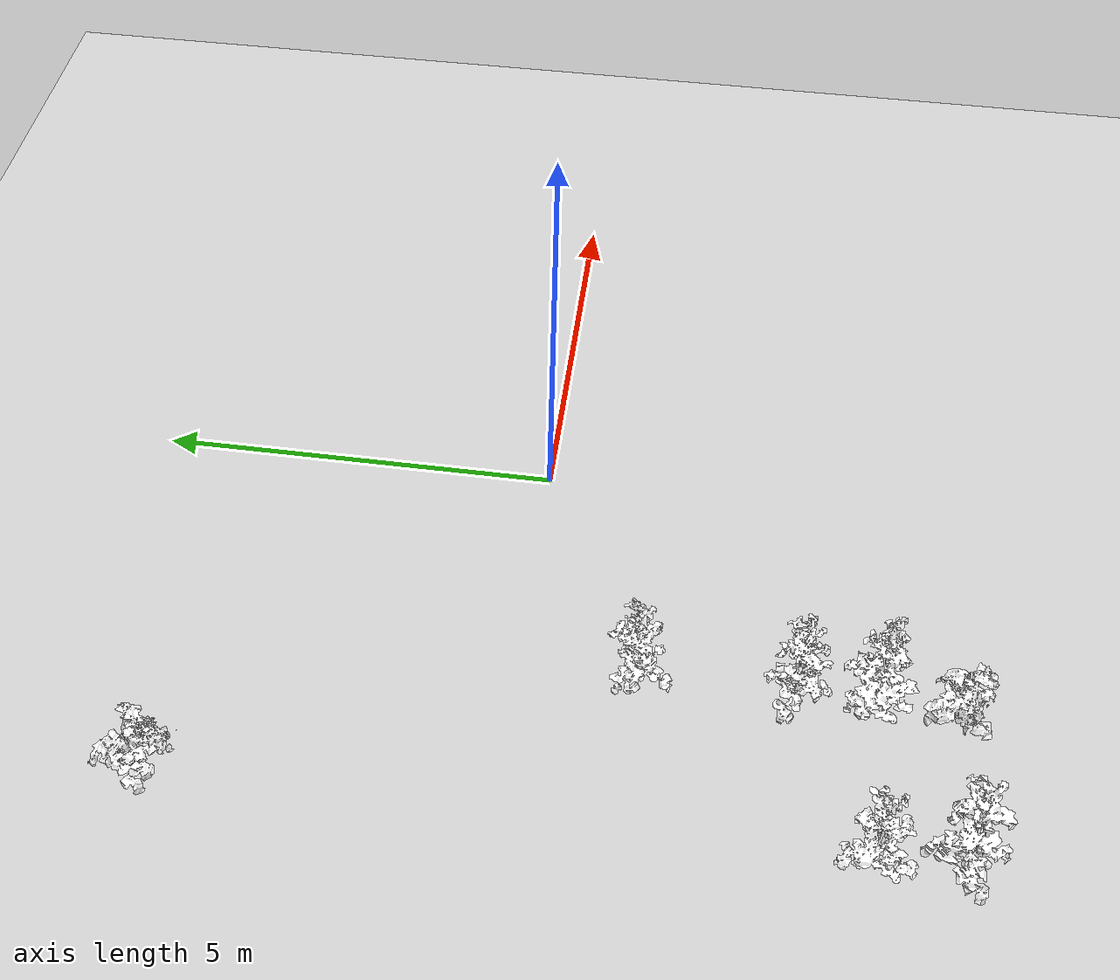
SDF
<sdf version="1.6">
 <world name="field">
  <physics type="ode">
   <max_step_size>0.001</max_step_size>
   <real_time_factor>1</real_time_factor>
   <real_time_update_rate>1000</real_time_update_rate>
  </physics>
  <gravity>0 0 -9.8</gravity>
  <magnetic_field>6e-06 2.3e-05 -4.2e-05</magnetic_field>
  <scene><ambient>1 1 1 1</ambient><background>0.8 0.8 0.8 1</background><shadows>1</shadows></scene>
  <light name="sun" type="directional">
   <pose>0 0 10 0 -0 0</pose>
   <diffuse>0.8 0.8 0.8 1</diffuse>
   <specular>0.8 0.8 0.8 1</specular>
   <attenuation>
    <range>1000</range>
    <constant>0.9</constant>
    <linear>0.01</linear>
    <quadratic>0.001</quadratic>
   </attenuation>
   <direction>-0.5 0.1 -0.9</direction>
  </light>
  <model name="ground"><static>true</static><include><uri>model://ground</uri></include></model>
  <model name="tomato_0">
   <static>true</static>
   <include><uri>model://tomato_0</uri></include>
   <pose>-5.0 -5.0 0 0 0 0</pose>
  </model>
  <model name="tomato_1">
   <static>true</static>
   <include><uri>model://tomato_1</uri></include>
   <pose>-5.0 -4.1 0 0 0 0</pose>
  </model>
  <model name="tomato_10">
   <static>true</static>
   <include><uri>model://tomato_10</uri></include>
   <pose>-5.0 4.0 0 0 0 0</pose>
  </model>
  <model name="tomato_12">
   <static>true</static>
   <include><uri>model://tomato_12</uri></include>
   <pose>-3.0 -5.0 0 0 0 0</pose>
  </model>
  <model name="tomato_13">
   <static>true</static>
   <include><uri>model://tomato_13</uri></include>
   <pose>-3.0 -4.1 0 0 0 0</pose>
  </model>
  <model name="tomato_14">
   <static>true</static>
   <include><uri>model://tomato_14</uri></include>
   <pose>-3.0 -3.2 0 0 0 0</pose>
  </model>
  <model name="tomato_16">
   <static>true</static>
   <include><uri>model://tomato_16</uri></include>
   <pose>-3.0 -1.4 0 0 0 0</pose>
  </model>
 </world>
</sdf>

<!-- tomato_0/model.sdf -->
<sdf version="1.6">
  <model name="tomato_0">
    <static>true</static>
    <link name="link">
      <collision name="collision">
        <geometry>
          <box>
            <size>.1 .1 1</size>
          </box>
        </geometry>
      </collision>
      <visual name="branch">
        <geometry>
          <mesh>
            <uri>model://tomato_0/meshes/tomato.dae</uri>
            <submesh>
              <name>Branch1</name>
            </submesh>
          </mesh>
        </geometry>
        <material>
          <diffuse>1.0 1.0 1.0</diffuse>
          <script>
            <uri>model://tomato_0/materials/scripts/</uri>
            <uri>model://tomato_0/materials/textures/</uri>
            <name>branch</name>
          </script>
          <pbr>
            <metal>
              <albedo_map>model://tomato_0/materials/textures/AG15brn1.png</albedo_map>
            </metal>
          </pbr>
        </material>
      </visual>
      <visual name="leaf1">
        <geometry>
          <mesh>
            <uri>model://tomato_0/meshes/tomato.dae</uri>
            <submesh>
              <name>Leaf1</name>
            </submesh>
          </mesh>
        </geometry>
        <material>
          <diffuse>1.0 1.0 1.0</diffuse>
          <script>
            <uri>model://tomato_0/materials/scripts/</uri>
            <uri>model://tomato_0/materials/textures/</uri>
            <name>leaf1</name>
          </script>
          <pbr>
            <metal>
              <albedo_map>model://tomato_0/materials/textures/AG15lef1.png</albedo_map>
            </metal>
          </pbr>
        </material>
      </visual>
      <visual name="leaf2">
        <geometry>
          <mesh>
            <uri>model://tomato_0/meshes/tomato.dae</uri>
            <submesh>
              <name>Leaf2</name>
            </submesh>
          </mesh>
        </geometry>
        <material>
          <diffuse>1.0 1.0 1.0</diffuse>
          <script>
            <uri>model://tomato_0/materials/scripts/</uri>
            <uri>model://tomato_0/materials/textures/</uri>
            <name>leaf2</name>
          </script>
          <pbr>
            <metal>
              <albedo_map>model://tomato_0/materials/textures/AG15lef2.png</albedo_map>
            </metal>
          </pbr>
        </material>
      </visual>
      <visual name="fruit1">
        <geometry>
          <mesh>
            <uri>model://tomato_0/meshes/tomato.dae</uri>
            <submesh>
              <name>Fruit1</name>
            </submesh>
          </mesh>
        </geometry>
        <material>
          <diffuse>1.0 1.0 1.0</diffuse>
          <script>
            <uri>model://tomato_0/materials/scripts/</uri>
            <uri>model://tomato_0/materials/textures/</uri>
            <name>fruit1</name>
          </script>
          <pbr>
            <metal>
              <albedo_map>model://tomato_0/materials/textures/AG15frt1.png</albedo_map>
            </metal>
          </pbr>
        </material>
      </visual>
      <visual name="fruit2">
        <geometry>
          <mesh>
            <uri>model://tomato_0/meshes/tomato.dae</uri>
            <submesh>
              <name>Fruit2</name>
            </submesh>
          </mesh>
        </geometry>
        <material>
          <diffuse>1.0 1.0 1.0</diffuse>
          <script>
            <uri>model://tomato_0/materials/scripts/</uri>
            <uri>model://tomato_0/materials/textures/</uri>
            <name>fruit2</name>
          </script>
          <pbr>
            <metal>
              <albedo_map>model://tomato_0/materials/textures/AG15frt2.png</albedo_map>
            </metal>
          </pbr>
        </material>
      </visual>
      <visual name="fruit3">
        <geometry>
          <mesh>
            <uri>model://tomato_0/meshes/tomato.dae</uri>
            <submesh>
              <name>Fruit3</name>
            </submesh>
          </mesh>
        </geometry>
        <material>
          <diffuse>1.0 1.0 1.0</diffuse>
          <script>
            <uri>model://tomato_0/materials/scripts/</uri>
            <uri>model://tomato_0/materials/textures/</uri>
            <name>fruit3</name>
          </script>
          <pbr>
            <metal>
              <albedo_map>model://tomato_0/materials/textures/AG15frt3.png</albedo_map>
            </metal>
          </pbr>
        </material>
      </visual>
      <visual name="fruit4">
        <geometry>
          <mesh>
            <uri>model://tomato_0/meshes/tomato.dae</uri>
            <submesh>
              <name>Fruit4</name>
            </submesh>
          </mesh>
        </geometry>
        <material>
          <diffuse>1.0 1.0 1.0</diffuse>
          <script>
            <uri>model://tomato_0/materials/scripts/</uri>
            <uri>model://tomato_0/materials/textures/</uri>
            <name>fruit4</name>
          </script>
          <pbr>
            <metal>
              <albedo_map>model://tomato_0/materials/textures/AG15frt4.png</albedo_map>
            </metal>
          </pbr>
        </material>
      </visual>
      <visual name="blossom1">
        <geometry>
          <mesh>
            <uri>model://tomato_0/meshes/tomato.dae</uri>
            <submesh>
              <name>Blossom1</name>
            </submesh>
          </mesh>
        </geometry>
        <material>
          <diffuse>1.0 1.0 1.0</diffuse>
          <script>
            <uri>model://tomato_0/materials/scripts/</uri>
            <uri>model://tomato_0/materials/textures/</uri>
            <name>blossom1</name>
          </script>
          <pbr>
            <metal>
              <albedo_map>model://tomato_0/materials/textures/AG15blo1.png</albedo_map>
            </metal>
          </pbr>
        </material>
      </visual>
      <visual name="blossom2">
        <geometry>
          <mesh>
            <uri>model://tomato_0/meshes/tomato.dae</uri>
            <submesh>
              <name>Blossom2</name>
            </submesh>
          </mesh>
        </geometry>
        <material>
          <diffuse>1.0 1.0 1.0</diffuse>
          <script>
            <uri>model://tomato_0/materials/scripts/</uri>
            <uri>model://tomato_0/materials/textures/</uri>
            <name>blossom2</name>
          </script>
          <pbr>
            <metal>
              <albedo_map>model://tomato_0/materials/textures/AG15blo2.png</albedo_map>
            </metal>
          </pbr>
        </material>
      </visual>
      <visual name="blossom3">
        <geometry>
          <mesh>
            <uri>model://tomato_0/meshes/tomato.dae</uri>
            <submesh>
              <name>Blossom3</name>
            </submesh>
          </mesh>
        </geometry>
        <material>
          <diffuse>1.0 1.0 1.0</diffuse>
          <script>
            <uri>model://tomato_0/materials/scripts/</uri>
            <uri>model://tomato_0/materials/textures/</uri>
            <name>blossom3</name>
          </script>
          <pbr>
            <metal>
              <albedo_map>model://tomato_0/materials/textures/AG15blo3.png</albedo_map>
            </metal>
          </pbr>
        </material>
      </visual>
    </link>
  </model>
</sdf>

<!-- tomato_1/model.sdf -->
<sdf version="1.6">
  <model name="tomato_1">
    <static>true</static>
    <link name="link">
      <collision name="collision">
        <geometry>
          <box>
            <size>.1 .1 1</size>
          </box>
        </geometry>
      </collision>
      <visual name="branch">
        <geometry>
          <mesh>
            <uri>model://tomato_1/meshes/tomato.dae</uri>
            <submesh>
              <name>Branch1</name>
            </submesh>
          </mesh>
        </geometry>
        <material>
          <diffuse>1.0 1.0 1.0</diffuse>
          <script>
            <uri>model://tomato_1/materials/scripts/</uri>
            <uri>model://tomato_1/materials/textures/</uri>
            <name>branch</name>
          </script>
          <pbr>
            <metal>
              <albedo_map>model://tomato_1/materials/textures/AG15brn1.png</albedo_map>
            </metal>
          </pbr>
        </material>
      </visual>
      <visual name="leaf1">
        <geometry>
          <mesh>
            <uri>model://tomato_1/meshes/tomato.dae</uri>
            <submesh>
              <name>Leaf1</name>
            </submesh>
          </mesh>
        </geometry>
        <material>
          <diffuse>1.0 1.0 1.0</diffuse>
          <script>
            <uri>model://tomato_1/materials/scripts/</uri>
            <uri>model://tomato_1/materials/textures/</uri>
            <name>leaf1</name>
          </script>
          <pbr>
            <metal>
              <albedo_map>model://tomato_1/materials/textures/AG15lef1.png</albedo_map>
            </metal>
          </pbr>
        </material>
      </visual>
      <visual name="leaf2">
        <geometry>
          <mesh>
            <uri>model://tomato_1/meshes/tomato.dae</uri>
            <submesh>
              <name>Leaf2</name>
            </submesh>
          </mesh>
        </geometry>
        <material>
          <diffuse>1.0 1.0 1.0</diffuse>
          <script>
            <uri>model://tomato_1/materials/scripts/</uri>
            <uri>model://tomato_1/materials/textures/</uri>
            <name>leaf2</name>
          </script>
          <pbr>
            <metal>
              <albedo_map>model://tomato_1/materials/textures/AG15lef2.png</albedo_map>
            </metal>
          </pbr>
        </material>
      </visual>
      <visual name="fruit1">
        <geometry>
          <mesh>
            <uri>model://tomato_1/meshes/tomato.dae</uri>
            <submesh>
              <name>Fruit1</name>
            </submesh>
          </mesh>
        </geometry>
        <material>
          <diffuse>1.0 1.0 1.0</diffuse>
          <script>
            <uri>model://tomato_1/materials/scripts/</uri>
            <uri>model://tomato_1/materials/textures/</uri>
            <name>fruit1</name>
          </script>
          <pbr>
            <metal>
              <albedo_map>model://tomato_1/materials/textures/AG15frt1.png</albedo_map>
            </metal>
          </pbr>
        </material>
      </visual>
      <visual name="fruit2">
        <geometry>
          <mesh>
            <uri>model://tomato_1/meshes/tomato.dae</uri>
            <submesh>
              <name>Fruit2</name>
            </submesh>
          </mesh>
        </geometry>
        <material>
          <diffuse>1.0 1.0 1.0</diffuse>
          <script>
            <uri>model://tomato_1/materials/scripts/</uri>
            <uri>model://tomato_1/materials/textures/</uri>
            <name>fruit2</name>
          </script>
          <pbr>
            <metal>
              <albedo_map>model://tomato_1/materials/textures/AG15frt2.png</albedo_map>
            </metal>
          </pbr>
        </material>
      </visual>
      <visual name="fruit3">
        <geometry>
          <mesh>
            <uri>model://tomato_1/meshes/tomato.dae</uri>
            <submesh>
              <name>Fruit3</name>
            </submesh>
          </mesh>
        </geometry>
        <material>
          <diffuse>1.0 1.0 1.0</diffuse>
          <script>
            <uri>model://tomato_1/materials/scripts/</uri>
            <uri>model://tomato_1/materials/textures/</uri>
            <name>fruit3</name>
          </script>
          <pbr>
            <metal>
              <albedo_map>model://tomato_1/materials/textures/AG15frt3.png</albedo_map>
            </metal>
          </pbr>
        </material>
      </visual>
      <visual name="fruit4">
        <geometry>
          <mesh>
            <uri>model://tomato_1/meshes/tomato.dae</uri>
            <submesh>
              <name>Fruit4</name>
            </submesh>
          </mesh>
        </geometry>
        <material>
          <diffuse>1.0 1.0 1.0</diffuse>
          <script>
            <uri>model://tomato_1/materials/scripts/</uri>
            <uri>model://tomato_1/materials/textures/</uri>
            <name>fruit4</name>
          </script>
          <pbr>
            <metal>
              <albedo_map>model://tomato_1/materials/textures/AG15frt4.png</albedo_map>
            </metal>
          </pbr>
        </material>
      </visual>
      <visual name="blossom1">
        <geometry>
          <mesh>
            <uri>model://tomato_1/meshes/tomato.dae</uri>
            <submesh>
              <name>Blossom1</name>
            </submesh>
          </mesh>
        </geometry>
        <material>
          <diffuse>1.0 1.0 1.0</diffuse>
          <script>
            <uri>model://tomato_1/materials/scripts/</uri>
            <uri>model://tomato_1/materials/textures/</uri>
            <name>blossom1</name>
          </script>
          <pbr>
            <metal>
              <albedo_map>model://tomato_1/materials/textures/AG15blo1.png</albedo_map>
            </metal>
          </pbr>
        </material>
      </visual>
      <visual name="blossom2">
        <geometry>
          <mesh>
            <uri>model://tomato_1/meshes/tomato.dae</uri>
            <submesh>
              <name>Blossom2</name>
            </submesh>
          </mesh>
        </geometry>
        <material>
          <diffuse>1.0 1.0 1.0</diffuse>
          <script>
            <uri>model://tomato_1/materials/scripts/</uri>
            <uri>model://tomato_1/materials/textures/</uri>
            <name>blossom2</name>
          </script>
          <pbr>
            <metal>
              <albedo_map>model://tomato_1/materials/textures/AG15blo2.png</albedo_map>
            </metal>
          </pbr>
        </material>
      </visual>
      <visual name="blossom3">
        <geometry>
          <mesh>
            <uri>model://tomato_1/meshes/tomato.dae</uri>
            <submesh>
              <name>Blossom3</name>
            </submesh>
          </mesh>
        </geometry>
        <material>
          <diffuse>1.0 1.0 1.0</diffuse>
          <script>
            <uri>model://tomato_1/materials/scripts/</uri>
            <uri>model://tomato_1/materials/textures/</uri>
            <name>blossom3</name>
          </script>
          <pbr>
            <metal>
              <albedo_map>model://tomato_1/materials/textures/AG15blo3.png</albedo_map>
            </metal>
          </pbr>
        </material>
      </visual>
    </link>
  </model>
</sdf>

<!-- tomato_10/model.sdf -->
<sdf version="1.6">
  <model name="tomato_10">
    <static>true</static>
    <link name="link">
      <collision name="collision">
        <geometry>
          <box>
            <size>.1 .1 1</size>
          </box>
        </geometry>
      </collision>
      <visual name="branch">
        <geometry>
          <mesh>
            <uri>model://tomato_10/meshes/tomato.dae</uri>
            <submesh>
              <name>Branch1</name>
            </submesh>
          </mesh>
        </geometry>
        <material>
          <diffuse>1.0 1.0 1.0</diffuse>
          <script>
            <uri>model://tomato_10/materials/scripts/</uri>
            <uri>model://tomato_10/materials/textures/</uri>
            <name>branch</name>
          </script>
          <pbr>
            <metal>
              <albedo_map>model://tomato_10/materials/textures/AG15brn1.png</albedo_map>
            </metal>
          </pbr>
        </material>
      </visual>
      <visual name="leaf1">
        <geometry>
          <mesh>
            <uri>model://tomato_10/meshes/tomato.dae</uri>
            <submesh>
              <name>Leaf1</name>
            </submesh>
          </mesh>
        </geometry>
        <material>
          <diffuse>1.0 1.0 1.0</diffuse>
          <script>
            <uri>model://tomato_10/materials/scripts/</uri>
            <uri>model://tomato_10/materials/textures/</uri>
            <name>leaf1</name>
          </script>
          <pbr>
            <metal>
              <albedo_map>model://tomato_10/materials/textures/AG15lef1.png</albedo_map>
            </metal>
          </pbr>
        </material>
      </visual>
      <visual name="leaf2">
        <geometry>
          <mesh>
            <uri>model://tomato_10/meshes/tomato.dae</uri>
            <submesh>
              <name>Leaf2</name>
            </submesh>
          </mesh>
        </geometry>
        <material>
          <diffuse>1.0 1.0 1.0</diffuse>
          <script>
            <uri>model://tomato_10/materials/scripts/</uri>
            <uri>model://tomato_10/materials/textures/</uri>
            <name>leaf2</name>
          </script>
          <pbr>
            <metal>
              <albedo_map>model://tomato_10/materials/textures/AG15lef2.png</albedo_map>
            </metal>
          </pbr>
        </material>
      </visual>
      <visual name="fruit1">
        <geometry>
          <mesh>
            <uri>model://tomato_10/meshes/tomato.dae</uri>
            <submesh>
              <name>Fruit1</name>
            </submesh>
          </mesh>
        </geometry>
        <material>
          <diffuse>1.0 1.0 1.0</diffuse>
          <script>
            <uri>model://tomato_10/materials/scripts/</uri>
            <uri>model://tomato_10/materials/textures/</uri>
            <name>fruit1</name>
          </script>
          <pbr>
            <metal>
              <albedo_map>model://tomato_10/materials/textures/AG15frt1.png</albedo_map>
            </metal>
          </pbr>
        </material>
      </visual>
      <visual name="fruit2">
        <geometry>
          <mesh>
            <uri>model://tomato_10/meshes/tomato.dae</uri>
            <submesh>
              <name>Fruit2</name>
            </submesh>
          </mesh>
        </geometry>
        <material>
          <diffuse>1.0 1.0 1.0</diffuse>
          <script>
            <uri>model://tomato_10/materials/scripts/</uri>
            <uri>model://tomato_10/materials/textures/</uri>
            <name>fruit2</name>
          </script>
          <pbr>
            <metal>
              <albedo_map>model://tomato_10/materials/textures/AG15frt2.png</albedo_map>
            </metal>
          </pbr>
        </material>
      </visual>
      <visual name="fruit3">
        <geometry>
          <mesh>
            <uri>model://tomato_10/meshes/tomato.dae</uri>
            <submesh>
              <name>Fruit3</name>
            </submesh>
          </mesh>
        </geometry>
        <material>
          <diffuse>1.0 1.0 1.0</diffuse>
          <script>
            <uri>model://tomato_10/materials/scripts/</uri>
            <uri>model://tomato_10/materials/textures/</uri>
            <name>fruit3</name>
          </script>
          <pbr>
            <metal>
              <albedo_map>model://tomato_10/materials/textures/AG15frt3.png</albedo_map>
            </metal>
          </pbr>
        </material>
      </visual>
      <visual name="fruit4">
        <geometry>
          <mesh>
            <uri>model://tomato_10/meshes/tomato.dae</uri>
            <submesh>
              <name>Fruit4</name>
            </submesh>
          </mesh>
        </geometry>
        <material>
          <diffuse>1.0 1.0 1.0</diffuse>
          <script>
            <uri>model://tomato_10/materials/scripts/</uri>
            <uri>model://tomato_10/materials/textures/</uri>
            <name>fruit4</name>
          </script>
          <pbr>
            <metal>
              <albedo_map>model://tomato_10/materials/textures/AG15frt4.png</albedo_map>
            </metal>
          </pbr>
        </material>
      </visual>
      <visual name="blossom1">
        <geometry>
          <mesh>
            <uri>model://tomato_10/meshes/tomato.dae</uri>
            <submesh>
              <name>Blossom1</name>
            </submesh>
          </mesh>
        </geometry>
        <material>
          <diffuse>1.0 1.0 1.0</diffuse>
          <script>
            <uri>model://tomato_10/materials/scripts/</uri>
            <uri>model://tomato_10/materials/textures/</uri>
            <name>blossom1</name>
          </script>
          <pbr>
            <metal>
              <albedo_map>model://tomato_10/materials/textures/AG15blo1.png</albedo_map>
            </metal>
          </pbr>
        </material>
      </visual>
      <visual name="blossom2">
        <geometry>
          <mesh>
            <uri>model://tomato_10/meshes/tomato.dae</uri>
            <submesh>
              <name>Blossom2</name>
            </submesh>
          </mesh>
        </geometry>
        <material>
          <diffuse>1.0 1.0 1.0</diffuse>
          <script>
            <uri>model://tomato_10/materials/scripts/</uri>
            <uri>model://tomato_10/materials/textures/</uri>
            <name>blossom2</name>
          </script>
          <pbr>
            <metal>
              <albedo_map>model://tomato_10/materials/textures/AG15blo2.png</albedo_map>
            </metal>
          </pbr>
        </material>
      </visual>
      <visual name="blossom3">
        <geometry>
          <mesh>
            <uri>model://tomato_10/meshes/tomato.dae</uri>
            <submesh>
              <name>Blossom3</name>
            </submesh>
          </mesh>
        </geometry>
        <material>
          <diffuse>1.0 1.0 1.0</diffuse>
          <script>
            <uri>model://tomato_10/materials/scripts/</uri>
            <uri>model://tomato_10/materials/textures/</uri>
            <name>blossom3</name>
          </script>
          <pbr>
            <metal>
              <albedo_map>model://tomato_10/materials/textures/AG15blo3.png</albedo_map>
            </metal>
          </pbr>
        </material>
      </visual>
    </link>
  </model>
</sdf>

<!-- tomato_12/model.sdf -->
<sdf version="1.6">
  <model name="tomato_12">
    <static>true</static>
    <link name="link">
      <collision name="collision">
        <geometry>
          <box>
            <size>.1 .1 1</size>
          </box>
        </geometry>
      </collision>
      <visual name="branch">
        <geometry>
          <mesh>
            <uri>model://tomato_12/meshes/tomato.dae</uri>
            <submesh>
              <name>Branch1</name>
            </submesh>
          </mesh>
        </geometry>
        <material>
          <diffuse>1.0 1.0 1.0</diffuse>
          <script>
            <uri>model://tomato_12/materials/scripts/</uri>
            <uri>model://tomato_12/materials/textures/</uri>
            <name>branch</name>
          </script>
          <pbr>
            <metal>
              <albedo_map>model://tomato_12/materials/textures/AG15brn1.png</albedo_map>
            </metal>
          </pbr>
        </material>
      </visual>
      <visual name="leaf1">
        <geometry>
          <mesh>
            <uri>model://tomato_12/meshes/tomato.dae</uri>
            <submesh>
              <name>Leaf1</name>
            </submesh>
          </mesh>
        </geometry>
        <material>
          <diffuse>1.0 1.0 1.0</diffuse>
          <script>
            <uri>model://tomato_12/materials/scripts/</uri>
            <uri>model://tomato_12/materials/textures/</uri>
            <name>leaf1</name>
          </script>
          <pbr>
            <metal>
              <albedo_map>model://tomato_12/materials/textures/AG15lef1.png</albedo_map>
            </metal>
          </pbr>
        </material>
      </visual>
      <visual name="leaf2">
        <geometry>
          <mesh>
            <uri>model://tomato_12/meshes/tomato.dae</uri>
            <submesh>
              <name>Leaf2</name>
            </submesh>
          </mesh>
        </geometry>
        <material>
          <diffuse>1.0 1.0 1.0</diffuse>
          <script>
            <uri>model://tomato_12/materials/scripts/</uri>
            <uri>model://tomato_12/materials/textures/</uri>
            <name>leaf2</name>
          </script>
          <pbr>
            <metal>
              <albedo_map>model://tomato_12/materials/textures/AG15lef2.png</albedo_map>
            </metal>
          </pbr>
        </material>
      </visual>
      <visual name="fruit1">
        <geometry>
          <mesh>
            <uri>model://tomato_12/meshes/tomato.dae</uri>
            <submesh>
              <name>Fruit1</name>
            </submesh>
          </mesh>
        </geometry>
        <material>
          <diffuse>1.0 1.0 1.0</diffuse>
          <script>
            <uri>model://tomato_12/materials/scripts/</uri>
            <uri>model://tomato_12/materials/textures/</uri>
            <name>fruit1</name>
          </script>
          <pbr>
            <metal>
              <albedo_map>model://tomato_12/materials/textures/AG15frt1.png</albedo_map>
            </metal>
          </pbr>
        </material>
      </visual>
      <visual name="fruit2">
        <geometry>
          <mesh>
            <uri>model://tomato_12/meshes/tomato.dae</uri>
            <submesh>
              <name>Fruit2</name>
            </submesh>
          </mesh>
        </geometry>
        <material>
          <diffuse>1.0 1.0 1.0</diffuse>
          <script>
            <uri>model://tomato_12/materials/scripts/</uri>
            <uri>model://tomato_12/materials/textures/</uri>
            <name>fruit2</name>
          </script>
          <pbr>
            <metal>
              <albedo_map>model://tomato_12/materials/textures/AG15frt2.png</albedo_map>
            </metal>
          </pbr>
        </material>
      </visual>
      <visual name="fruit3">
        <geometry>
          <mesh>
            <uri>model://tomato_12/meshes/tomato.dae</uri>
            <submesh>
              <name>Fruit3</name>
            </submesh>
          </mesh>
        </geometry>
        <material>
          <diffuse>1.0 1.0 1.0</diffuse>
          <script>
            <uri>model://tomato_12/materials/scripts/</uri>
            <uri>model://tomato_12/materials/textures/</uri>
            <name>fruit3</name>
          </script>
          <pbr>
            <metal>
              <albedo_map>model://tomato_12/materials/textures/AG15frt3.png</albedo_map>
            </metal>
          </pbr>
        </material>
      </visual>
      <visual name="fruit4">
        <geometry>
          <mesh>
            <uri>model://tomato_12/meshes/tomato.dae</uri>
            <submesh>
              <name>Fruit4</name>
            </submesh>
          </mesh>
        </geometry>
        <material>
          <diffuse>1.0 1.0 1.0</diffuse>
          <script>
            <uri>model://tomato_12/materials/scripts/</uri>
            <uri>model://tomato_12/materials/textures/</uri>
            <name>fruit4</name>
          </script>
          <pbr>
            <metal>
              <albedo_map>model://tomato_12/materials/textures/AG15frt4.png</albedo_map>
            </metal>
          </pbr>
        </material>
      </visual>
      <visual name="blossom1">
        <geometry>
          <mesh>
            <uri>model://tomato_12/meshes/tomato.dae</uri>
            <submesh>
              <name>Blossom1</name>
            </submesh>
          </mesh>
        </geometry>
        <material>
          <diffuse>1.0 1.0 1.0</diffuse>
          <script>
            <uri>model://tomato_12/materials/scripts/</uri>
            <uri>model://tomato_12/materials/textures/</uri>
            <name>blossom1</name>
          </script>
          <pbr>
            <metal>
              <albedo_map>model://tomato_12/materials/textures/AG15blo1.png</albedo_map>
            </metal>
          </pbr>
        </material>
      </visual>
      <visual name="blossom2">
        <geometry>
          <mesh>
            <uri>model://tomato_12/meshes/tomato.dae</uri>
            <submesh>
              <name>Blossom2</name>
            </submesh>
          </mesh>
        </geometry>
        <material>
          <diffuse>1.0 1.0 1.0</diffuse>
          <script>
            <uri>model://tomato_12/materials/scripts/</uri>
            <uri>model://tomato_12/materials/textures/</uri>
            <name>blossom2</name>
          </script>
          <pbr>
            <metal>
              <albedo_map>model://tomato_12/materials/textures/AG15blo2.png</albedo_map>
            </metal>
          </pbr>
        </material>
      </visual>
      <visual name="blossom3">
        <geometry>
          <mesh>
            <uri>model://tomato_12/meshes/tomato.dae</uri>
            <submesh>
              <name>Blossom3</name>
            </submesh>
          </mesh>
        </geometry>
        <material>
          <diffuse>1.0 1.0 1.0</diffuse>
          <script>
            <uri>model://tomato_12/materials/scripts/</uri>
            <uri>model://tomato_12/materials/textures/</uri>
            <name>blossom3</name>
          </script>
          <pbr>
            <metal>
              <albedo_map>model://tomato_12/materials/textures/AG15blo3.png</albedo_map>
            </metal>
          </pbr>
        </material>
      </visual>
    </link>
  </model>
</sdf>

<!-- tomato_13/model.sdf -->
<sdf version="1.6">
  <model name="tomato_13">
    <static>true</static>
    <link name="link">
      <collision name="collision">
        <geometry>
          <box>
            <size>.1 .1 1</size>
          </box>
        </geometry>
      </collision>
      <visual name="branch">
        <geometry>
          <mesh>
            <uri>model://tomato_13/meshes/tomato.dae</uri>
            <submesh>
              <name>Branch1</name>
            </submesh>
          </mesh>
        </geometry>
        <material>
          <diffuse>1.0 1.0 1.0</diffuse>
          <script>
            <uri>model://tomato_13/materials/scripts/</uri>
            <uri>model://tomato_13/materials/textures/</uri>
            <name>branch</name>
          </script>
          <pbr>
            <metal>
              <albedo_map>model://tomato_13/materials/textures/AG15brn1.png</albedo_map>
            </metal>
          </pbr>
        </material>
      </visual>
      <visual name="leaf1">
        <geometry>
          <mesh>
            <uri>model://tomato_13/meshes/tomato.dae</uri>
            <submesh>
              <name>Leaf1</name>
            </submesh>
          </mesh>
        </geometry>
        <material>
          <diffuse>1.0 1.0 1.0</diffuse>
          <script>
            <uri>model://tomato_13/materials/scripts/</uri>
            <uri>model://tomato_13/materials/textures/</uri>
            <name>leaf1</name>
          </script>
          <pbr>
            <metal>
              <albedo_map>model://tomato_13/materials/textures/AG15lef1.png</albedo_map>
            </metal>
          </pbr>
        </material>
      </visual>
      <visual name="leaf2">
        <geometry>
          <mesh>
            <uri>model://tomato_13/meshes/tomato.dae</uri>
            <submesh>
              <name>Leaf2</name>
            </submesh>
          </mesh>
        </geometry>
        <material>
          <diffuse>1.0 1.0 1.0</diffuse>
          <script>
            <uri>model://tomato_13/materials/scripts/</uri>
            <uri>model://tomato_13/materials/textures/</uri>
            <name>leaf2</name>
          </script>
          <pbr>
            <metal>
              <albedo_map>model://tomato_13/materials/textures/AG15lef2.png</albedo_map>
            </metal>
          </pbr>
        </material>
      </visual>
      <visual name="fruit1">
        <geometry>
          <mesh>
            <uri>model://tomato_13/meshes/tomato.dae</uri>
            <submesh>
              <name>Fruit1</name>
            </submesh>
          </mesh>
        </geometry>
        <material>
          <diffuse>1.0 1.0 1.0</diffuse>
          <script>
            <uri>model://tomato_13/materials/scripts/</uri>
            <uri>model://tomato_13/materials/textures/</uri>
            <name>fruit1</name>
          </script>
          <pbr>
            <metal>
              <albedo_map>model://tomato_13/materials/textures/AG15frt1.png</albedo_map>
            </metal>
          </pbr>
        </material>
      </visual>
      <visual name="fruit2">
        <geometry>
          <mesh>
            <uri>model://tomato_13/meshes/tomato.dae</uri>
            <submesh>
              <name>Fruit2</name>
            </submesh>
          </mesh>
        </geometry>
        <material>
          <diffuse>1.0 1.0 1.0</diffuse>
          <script>
            <uri>model://tomato_13/materials/scripts/</uri>
            <uri>model://tomato_13/materials/textures/</uri>
            <name>fruit2</name>
          </script>
          <pbr>
            <metal>
              <albedo_map>model://tomato_13/materials/textures/AG15frt2.png</albedo_map>
            </metal>
          </pbr>
        </material>
      </visual>
      <visual name="fruit3">
        <geometry>
          <mesh>
            <uri>model://tomato_13/meshes/tomato.dae</uri>
            <submesh>
              <name>Fruit3</name>
            </submesh>
          </mesh>
        </geometry>
        <material>
          <diffuse>1.0 1.0 1.0</diffuse>
          <script>
            <uri>model://tomato_13/materials/scripts/</uri>
            <uri>model://tomato_13/materials/textures/</uri>
            <name>fruit3</name>
          </script>
          <pbr>
            <metal>
              <albedo_map>model://tomato_13/materials/textures/AG15frt3.png</albedo_map>
            </metal>
          </pbr>
        </material>
      </visual>
      <visual name="fruit4">
        <geometry>
          <mesh>
            <uri>model://tomato_13/meshes/tomato.dae</uri>
            <submesh>
              <name>Fruit4</name>
            </submesh>
          </mesh>
        </geometry>
        <material>
          <diffuse>1.0 1.0 1.0</diffuse>
          <script>
            <uri>model://tomato_13/materials/scripts/</uri>
            <uri>model://tomato_13/materials/textures/</uri>
            <name>fruit4</name>
          </script>
          <pbr>
            <metal>
              <albedo_map>model://tomato_13/materials/textures/AG15frt4.png</albedo_map>
            </metal>
          </pbr>
        </material>
      </visual>
      <visual name="blossom1">
        <geometry>
          <mesh>
            <uri>model://tomato_13/meshes/tomato.dae</uri>
            <submesh>
              <name>Blossom1</name>
            </submesh>
          </mesh>
        </geometry>
        <material>
          <diffuse>1.0 1.0 1.0</diffuse>
          <script>
            <uri>model://tomato_13/materials/scripts/</uri>
            <uri>model://tomato_13/materials/textures/</uri>
            <name>blossom1</name>
          </script>
          <pbr>
            <metal>
              <albedo_map>model://tomato_13/materials/textures/AG15blo1.png</albedo_map>
            </metal>
          </pbr>
        </material>
      </visual>
      <visual name="blossom2">
        <geometry>
          <mesh>
            <uri>model://tomato_13/meshes/tomato.dae</uri>
            <submesh>
              <name>Blossom2</name>
            </submesh>
          </mesh>
        </geometry>
        <material>
          <diffuse>1.0 1.0 1.0</diffuse>
          <script>
            <uri>model://tomato_13/materials/scripts/</uri>
            <uri>model://tomato_13/materials/textures/</uri>
            <name>blossom2</name>
          </script>
          <pbr>
            <metal>
              <albedo_map>model://tomato_13/materials/textures/AG15blo2.png</albedo_map>
            </metal>
          </pbr>
        </material>
      </visual>
      <visual name="blossom3">
        <geometry>
          <mesh>
            <uri>model://tomato_13/meshes/tomato.dae</uri>
            <submesh>
              <name>Blossom3</name>
            </submesh>
          </mesh>
        </geometry>
        <material>
          <diffuse>1.0 1.0 1.0</diffuse>
          <script>
            <uri>model://tomato_13/materials/scripts/</uri>
            <uri>model://tomato_13/materials/textures/</uri>
            <name>blossom3</name>
          </script>
          <pbr>
            <metal>
              <albedo_map>model://tomato_13/materials/textures/AG15blo3.png</albedo_map>
            </metal>
          </pbr>
        </material>
      </visual>
    </link>
  </model>
</sdf>

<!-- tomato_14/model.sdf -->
<sdf version="1.6">
  <model name="tomato_14">
    <static>true</static>
    <link name="link">
      <collision name="collision">
        <geometry>
          <box>
            <size>.1 .1 1</size>
          </box>
        </geometry>
      </collision>
      <visual name="branch">
        <geometry>
          <mesh>
            <uri>model://tomato_14/meshes/tomato.dae</uri>
            <submesh>
              <name>Branch1</name>
            </submesh>
          </mesh>
        </geometry>
        <material>
          <diffuse>1.0 1.0 1.0</diffuse>
          <script>
            <uri>model://tomato_14/materials/scripts/</uri>
            <uri>model://tomato_14/materials/textures/</uri>
            <name>branch</name>
          </script>
          <pbr>
            <metal>
              <albedo_map>model://tomato_14/materials/textures/AG15brn1.png</albedo_map>
            </metal>
          </pbr>
        </material>
      </visual>
      <visual name="leaf1">
        <geometry>
          <mesh>
            <uri>model://tomato_14/meshes/tomato.dae</uri>
            <submesh>
              <name>Leaf1</name>
            </submesh>
          </mesh>
        </geometry>
        <material>
          <diffuse>1.0 1.0 1.0</diffuse>
          <script>
            <uri>model://tomato_14/materials/scripts/</uri>
            <uri>model://tomato_14/materials/textures/</uri>
            <name>leaf1</name>
          </script>
          <pbr>
            <metal>
              <albedo_map>model://tomato_14/materials/textures/AG15lef1.png</albedo_map>
            </metal>
          </pbr>
        </material>
      </visual>
      <visual name="leaf2">
        <geometry>
          <mesh>
            <uri>model://tomato_14/meshes/tomato.dae</uri>
            <submesh>
              <name>Leaf2</name>
            </submesh>
          </mesh>
        </geometry>
        <material>
          <diffuse>1.0 1.0 1.0</diffuse>
          <script>
            <uri>model://tomato_14/materials/scripts/</uri>
            <uri>model://tomato_14/materials/textures/</uri>
            <name>leaf2</name>
          </script>
          <pbr>
            <metal>
              <albedo_map>model://tomato_14/materials/textures/AG15lef2.png</albedo_map>
            </metal>
          </pbr>
        </material>
      </visual>
      <visual name="fruit1">
        <geometry>
          <mesh>
            <uri>model://tomato_14/meshes/tomato.dae</uri>
            <submesh>
              <name>Fruit1</name>
            </submesh>
          </mesh>
        </geometry>
        <material>
          <diffuse>1.0 1.0 1.0</diffuse>
          <script>
            <uri>model://tomato_14/materials/scripts/</uri>
            <uri>model://tomato_14/materials/textures/</uri>
            <name>fruit1</name>
          </script>
          <pbr>
            <metal>
              <albedo_map>model://tomato_14/materials/textures/AG15frt1.png</albedo_map>
            </metal>
          </pbr>
        </material>
      </visual>
      <visual name="fruit2">
        <geometry>
          <mesh>
            <uri>model://tomato_14/meshes/tomato.dae</uri>
            <submesh>
              <name>Fruit2</name>
            </submesh>
          </mesh>
        </geometry>
        <material>
          <diffuse>1.0 1.0 1.0</diffuse>
          <script>
            <uri>model://tomato_14/materials/scripts/</uri>
            <uri>model://tomato_14/materials/textures/</uri>
            <name>fruit2</name>
          </script>
          <pbr>
            <metal>
              <albedo_map>model://tomato_14/materials/textures/AG15frt2.png</albedo_map>
            </metal>
          </pbr>
        </material>
      </visual>
      <visual name="fruit3">
        <geometry>
          <mesh>
            <uri>model://tomato_14/meshes/tomato.dae</uri>
            <submesh>
              <name>Fruit3</name>
            </submesh>
          </mesh>
        </geometry>
        <material>
          <diffuse>1.0 1.0 1.0</diffuse>
          <script>
            <uri>model://tomato_14/materials/scripts/</uri>
            <uri>model://tomato_14/materials/textures/</uri>
            <name>fruit3</name>
          </script>
          <pbr>
            <metal>
              <albedo_map>model://tomato_14/materials/textures/AG15frt3.png</albedo_map>
            </metal>
          </pbr>
        </material>
      </visual>
      <visual name="fruit4">
        <geometry>
          <mesh>
            <uri>model://tomato_14/meshes/tomato.dae</uri>
            <submesh>
              <name>Fruit4</name>
            </submesh>
          </mesh>
        </geometry>
        <material>
          <diffuse>1.0 1.0 1.0</diffuse>
          <script>
            <uri>model://tomato_14/materials/scripts/</uri>
            <uri>model://tomato_14/materials/textures/</uri>
            <name>fruit4</name>
          </script>
          <pbr>
            <metal>
              <albedo_map>model://tomato_14/materials/textures/AG15frt4.png</albedo_map>
            </metal>
          </pbr>
        </material>
      </visual>
      <visual name="blossom1">
        <geometry>
          <mesh>
            <uri>model://tomato_14/meshes/tomato.dae</uri>
            <submesh>
              <name>Blossom1</name>
            </submesh>
          </mesh>
        </geometry>
        <material>
          <diffuse>1.0 1.0 1.0</diffuse>
          <script>
            <uri>model://tomato_14/materials/scripts/</uri>
            <uri>model://tomato_14/materials/textures/</uri>
            <name>blossom1</name>
          </script>
          <pbr>
            <metal>
              <albedo_map>model://tomato_14/materials/textures/AG15blo1.png</albedo_map>
            </metal>
          </pbr>
        </material>
      </visual>
      <visual name="blossom2">
        <geometry>
          <mesh>
            <uri>model://tomato_14/meshes/tomato.dae</uri>
            <submesh>
              <name>Blossom2</name>
            </submesh>
          </mesh>
        </geometry>
        <material>
          <diffuse>1.0 1.0 1.0</diffuse>
          <script>
            <uri>model://tomato_14/materials/scripts/</uri>
            <uri>model://tomato_14/materials/textures/</uri>
            <name>blossom2</name>
          </script>
          <pbr>
            <metal>
              <albedo_map>model://tomato_14/materials/textures/AG15blo2.png</albedo_map>
            </metal>
          </pbr>
        </material>
      </visual>
      <visual name="blossom3">
        <geometry>
          <mesh>
            <uri>model://tomato_14/meshes/tomato.dae</uri>
            <submesh>
              <name>Blossom3</name>
            </submesh>
          </mesh>
        </geometry>
        <material>
          <diffuse>1.0 1.0 1.0</diffuse>
          <script>
            <uri>model://tomato_14/materials/scripts/</uri>
            <uri>model://tomato_14/materials/textures/</uri>
            <name>blossom3</name>
          </script>
          <pbr>
            <metal>
              <albedo_map>model://tomato_14/materials/textures/AG15blo3.png</albedo_map>
            </metal>
          </pbr>
        </material>
      </visual>
    </link>
  </model>
</sdf>

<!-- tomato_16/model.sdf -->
<sdf version="1.6">
  <model name="tomato_16">
    <static>true</static>
    <link name="link">
      <collision name="collision">
        <geometry>
          <box>
            <size>.1 .1 1</size>
          </box>
        </geometry>
      </collision>
      <visual name="branch">
        <geometry>
          <mesh>
            <uri>model://tomato_16/meshes/tomato.dae</uri>
            <submesh>
              <name>Branch1</name>
            </submesh>
          </mesh>
        </geometry>
        <material>
          <diffuse>1.0 1.0 1.0</diffuse>
          <script>
            <uri>model://tomato_16/materials/scripts/</uri>
            <uri>model://tomato_16/materials/textures/</uri>
            <name>branch</name>
          </script>
          <pbr>
            <metal>
              <albedo_map>model://tomato_16/materials/textures/AG15brn1.png</albedo_map>
            </metal>
          </pbr>
        </material>
      </visual>
      <visual name="leaf1">
        <geometry>
          <mesh>
            <uri>model://tomato_16/meshes/tomato.dae</uri>
            <submesh>
              <name>Leaf1</name>
            </submesh>
          </mesh>
        </geometry>
        <material>
          <diffuse>1.0 1.0 1.0</diffuse>
          <script>
            <uri>model://tomato_16/materials/scripts/</uri>
            <uri>model://tomato_16/materials/textures/</uri>
            <name>leaf1</name>
          </script>
          <pbr>
            <metal>
              <albedo_map>model://tomato_16/materials/textures/AG15lef1.png</albedo_map>
            </metal>
          </pbr>
        </material>
      </visual>
      <visual name="leaf2">
        <geometry>
          <mesh>
            <uri>model://tomato_16/meshes/tomato.dae</uri>
            <submesh>
              <name>Leaf2</name>
            </submesh>
          </mesh>
        </geometry>
        <material>
          <diffuse>1.0 1.0 1.0</diffuse>
          <script>
            <uri>model://tomato_16/materials/scripts/</uri>
            <uri>model://tomato_16/materials/textures/</uri>
            <name>leaf2</name>
          </script>
          <pbr>
            <metal>
              <albedo_map>model://tomato_16/materials/textures/AG15lef2.png</albedo_map>
            </metal>
          </pbr>
        </material>
      </visual>
      <visual name="fruit1">
        <geometry>
          <mesh>
            <uri>model://tomato_16/meshes/tomato.dae</uri>
            <submesh>
              <name>Fruit1</name>
            </submesh>
          </mesh>
        </geometry>
        <material>
          <diffuse>1.0 1.0 1.0</diffuse>
          <script>
            <uri>model://tomato_16/materials/scripts/</uri>
            <uri>model://tomato_16/materials/textures/</uri>
            <name>fruit1</name>
          </script>
          <pbr>
            <metal>
              <albedo_map>model://tomato_16/materials/textures/AG15frt1.png</albedo_map>
            </metal>
          </pbr>
        </material>
      </visual>
      <visual name="fruit2">
        <geometry>
          <mesh>
            <uri>model://tomato_16/meshes/tomato.dae</uri>
            <submesh>
              <name>Fruit2</name>
            </submesh>
          </mesh>
        </geometry>
        <material>
          <diffuse>1.0 1.0 1.0</diffuse>
          <script>
            <uri>model://tomato_16/materials/scripts/</uri>
            <uri>model://tomato_16/materials/textures/</uri>
            <name>fruit2</name>
          </script>
          <pbr>
            <metal>
              <albedo_map>model://tomato_16/materials/textures/AG15frt2.png</albedo_map>
            </metal>
          </pbr>
        </material>
      </visual>
      <visual name="fruit3">
        <geometry>
          <mesh>
            <uri>model://tomato_16/meshes/tomato.dae</uri>
            <submesh>
              <name>Fruit3</name>
            </submesh>
          </mesh>
        </geometry>
        <material>
          <diffuse>1.0 1.0 1.0</diffuse>
          <script>
            <uri>model://tomato_16/materials/scripts/</uri>
            <uri>model://tomato_16/materials/textures/</uri>
            <name>fruit3</name>
          </script>
          <pbr>
            <metal>
              <albedo_map>model://tomato_16/materials/textures/AG15frt3.png</albedo_map>
            </metal>
          </pbr>
        </material>
      </visual>
      <visual name="fruit4">
        <geometry>
          <mesh>
            <uri>model://tomato_16/meshes/tomato.dae</uri>
            <submesh>
              <name>Fruit4</name>
            </submesh>
          </mesh>
        </geometry>
        <material>
          <diffuse>1.0 1.0 1.0</diffuse>
          <script>
            <uri>model://tomato_16/materials/scripts/</uri>
            <uri>model://tomato_16/materials/textures/</uri>
            <name>fruit4</name>
          </script>
          <pbr>
            <metal>
              <albedo_map>model://tomato_16/materials/textures/AG15frt4.png</albedo_map>
            </metal>
          </pbr>
        </material>
      </visual>
      <visual name="blossom1">
        <geometry>
          <mesh>
            <uri>model://tomato_16/meshes/tomato.dae</uri>
            <submesh>
              <name>Blossom1</name>
            </submesh>
          </mesh>
        </geometry>
        <material>
          <diffuse>1.0 1.0 1.0</diffuse>
          <script>
            <uri>model://tomato_16/materials/scripts/</uri>
            <uri>model://tomato_16/materials/textures/</uri>
            <name>blossom1</name>
          </script>
          <pbr>
            <metal>
              <albedo_map>model://tomato_16/materials/textures/AG15blo1.png</albedo_map>
            </metal>
          </pbr>
        </material>
      </visual>
      <visual name="blossom2">
        <geometry>
          <mesh>
            <uri>model://tomato_16/meshes/tomato.dae</uri>
            <submesh>
              <name>Blossom2</name>
            </submesh>
          </mesh>
        </geometry>
        <material>
          <diffuse>1.0 1.0 1.0</diffuse>
          <script>
            <uri>model://tomato_16/materials/scripts/</uri>
            <uri>model://tomato_16/materials/textures/</uri>
            <name>blossom2</name>
          </script>
          <pbr>
            <metal>
              <albedo_map>model://tomato_16/materials/textures/AG15blo2.png</albedo_map>
            </metal>
          </pbr>
        </material>
      </visual>
      <visual name="blossom3">
        <geometry>
          <mesh>
            <uri>model://tomato_16/meshes/tomato.dae</uri>
            <submesh>
              <name>Blossom3</name>
            </submesh>
          </mesh>
        </geometry>
        <material>
          <diffuse>1.0 1.0 1.0</diffuse>
          <script>
            <uri>model://tomato_16/materials/scripts/</uri>
            <uri>model://tomato_16/materials/textures/</uri>
            <name>blossom3</name>
          </script>
          <pbr>
            <metal>
              <albedo_map>model://tomato_16/materials/textures/AG15blo3.png</albedo_map>
            </metal>
          </pbr>
        </material>
      </visual>
    </link>
  </model>
</sdf>
